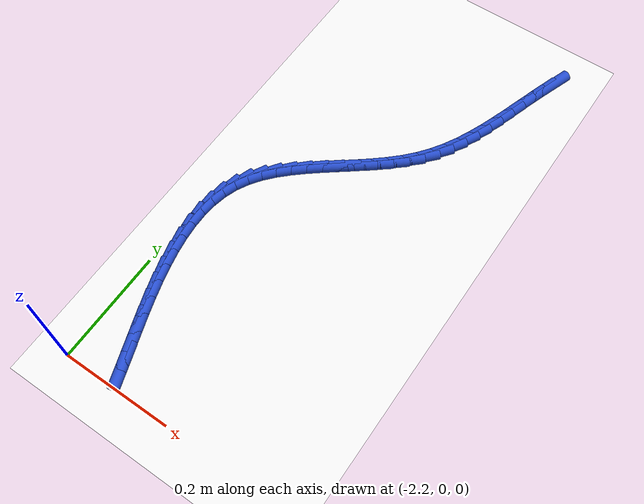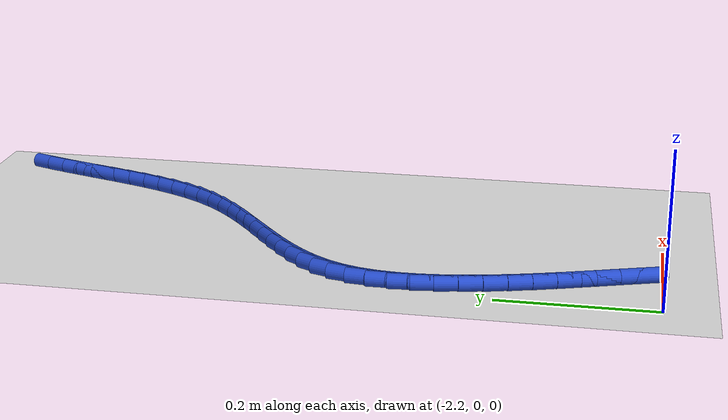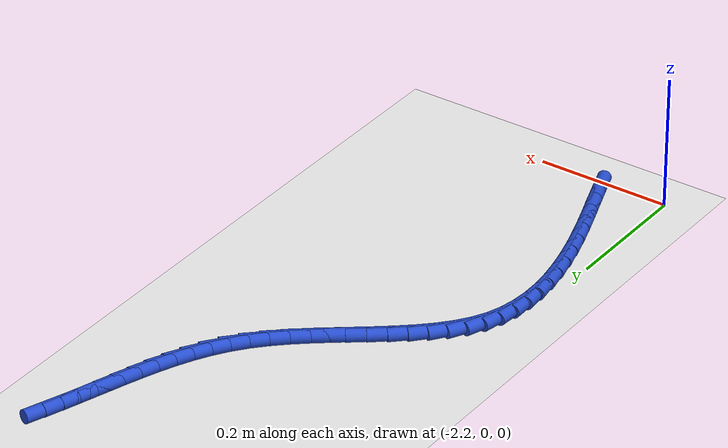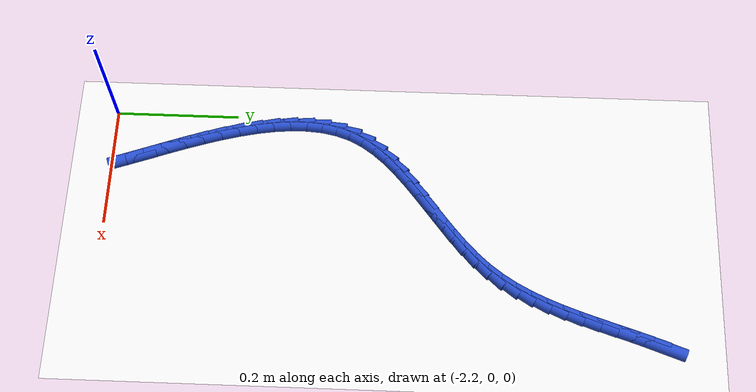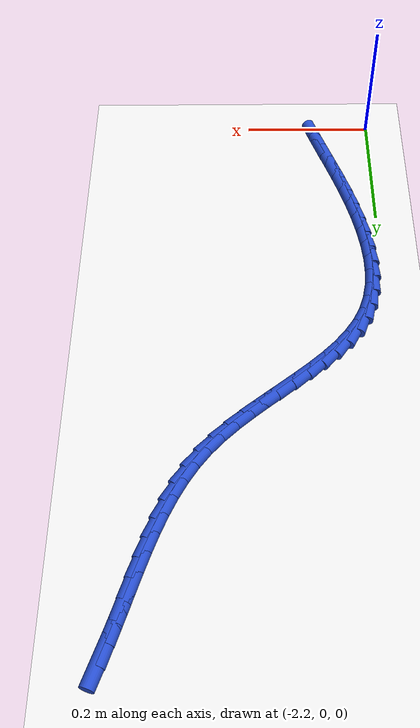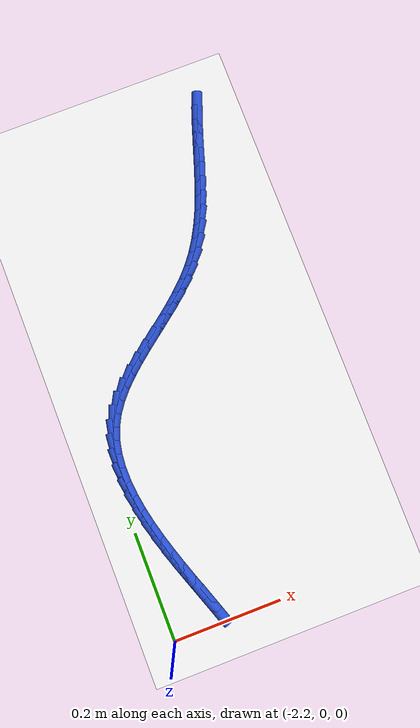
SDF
<sdf version="1.6">
 <world name="default">
  <model name="ground_plane">
   <static>1</static>
   <link name="link">
    <collision name="collision">
     <geometry><plane><normal>0 0 1</normal><size>100 100</size></plane></geometry>
     <surface><friction><ode><mu>100</mu><mu2>50</mu2></ode></friction></surface>
    </collision>
    <visual name="visual">
     <cast_shadows>0</cast_shadows>
     <geometry><plane><normal>0 0 1</normal><size>100 100</size></plane></geometry>
     <material>
      <script><uri>file://media/materials/scripts/gazebo.material</uri><name>Gazebo/WhiteGlow</name></script>
     </material>
    </visual>
   </link>
  </model>
  <model name="line">
   <link name="link_110">
    <pose>-1.820300067441712 0.8834932521563141 0.01 0 1.57 1.2251651449188223</pose>
    <collision name="collision">
     <geometry><cylinder><radius>0.01</radius><length>0.08</length></cylinder></geometry>
    </collision>
    <visual name="visual">
     <material>
      <script><name>Gazebo/Blue</name><uri>file://media/materials/scripts/gazebo.material</uri></script>
     </material>
     <geometry><cylinder><radius>0.01</radius><length>0.08</length></cylinder></geometry>
    </visual>
   </link>
   <link name="link_111">
    <pose>-1.8294961158217167 0.8579547317372505 0.01 0 1.57 1.2461106210678128</pose>
    <collision name="collision">
     <geometry><cylinder><radius>0.01</radius><length>0.08</length></cylinder></geometry>
    </collision>
    <visual name="visual">
     <material>
      <script><name>Gazebo/Blue</name><uri>file://media/materials/scripts/gazebo.material</uri></script>
     </material>
     <geometry><cylinder><radius>0.01</radius><length>0.08</length></cylinder></geometry>
    </visual>
   </link>
   <link name="link_112">
    <pose>-1.838176785709002 0.8321652896264321 0.01 0 1.57 1.2556341183278197</pose>
    <collision name="collision">
     <geometry><cylinder><radius>0.01</radius><length>0.08</length></cylinder></geometry>
    </collision>
    <visual name="visual">
     <material>
      <script><name>Gazebo/Blue</name><uri>file://media/materials/scripts/gazebo.material</uri></script>
     </material>
     <geometry><cylinder><radius>0.01</radius><length>0.08</length></cylinder></geometry>
    </visual>
   </link>
   <link name="link_113">
    <pose>-1.8466163895734051 0.8062792278059373 0.01 0 1.57 1.253813514334452</pose>
    <collision name="collision">
     <geometry><cylinder><radius>0.01</radius><length>0.08</length></cylinder></geometry>
    </collision>
    <visual name="visual">
     <material>
      <script><name>Gazebo/Blue</name><uri>file://media/materials/scripts/gazebo.material</uri></script>
     </material>
     <geometry><cylinder><radius>0.01</radius><length>0.08</length></cylinder></geometry>
    </visual>
   </link>
   <link name="link_114">
    <pose>-1.8550892398847627 0.7804508482578438 0.01 0 1.57 1.240581233020321</pose>
    <collision name="collision">
     <geometry><cylinder><radius>0.01</radius><length>0.08</length></cylinder></geometry>
    </collision>
    <visual name="visual">
     <material>
      <script><name>Gazebo/Blue</name><uri>file://media/materials/scripts/gazebo.material</uri></script>
     </material>
     <geometry><cylinder><radius>0.01</radius><length>0.08</length></cylinder></geometry>
    </visual>
   </link>
   <link name="link_115">
    <pose>-1.8638696491129116 0.7548344529642298 0.01 0 1.57 1.2157289327305618</pose>
    <collision name="collision">
     <geometry><cylinder><radius>0.01</radius><length>0.08</length></cylinder></geometry>
    </collision>
    <visual name="visual">
     <material>
      <script><name>Gazebo/Blue</name><uri>file://media/materials/scripts/gazebo.material</uri></script>
     </material>
     <geometry><cylinder><radius>0.01</radius><length>0.08</length></cylinder></geometry>
    </visual>
   </link>
   <link name="link_116">
    <pose>-1.8732319297276896 0.7295843439071734 0.01 0 1.57 1.1789548626125128</pose>
    <collision name="collision">
     <geometry><cylinder><radius>0.01</radius><length>0.08</length></cylinder></geometry>
    </collision>
    <visual name="visual">
     <material>
      <script><name>Gazebo/Blue</name><uri>file://media/materials/scripts/gazebo.material</uri></script>
     </material>
     <geometry><cylinder><radius>0.01</radius><length>0.08</length></cylinder></geometry>
    </visual>
   </link>
   <link name="link_117">
    <pose>-1.883450394198933 0.7048548230687531 0.01 0 1.57 1.1299626131642286</pose>
    <collision name="collision">
     <geometry><cylinder><radius>0.01</radius><length>0.08</length></cylinder></geometry>
    </collision>
    <visual name="visual">
     <material>
      <script><name>Gazebo/Blue</name><uri>file://media/materials/scripts/gazebo.material</uri></script>
     </material>
     <geometry><cylinder><radius>0.01</radius><length>0.08</length></cylinder></geometry>
    </visual>
   </link>
   <link name="link_118">
    <pose>-1.894799354996479 0.6808001924310462 0.01 0 1.57 1.0686218177737454</pose>
    <collision name="collision">
     <geometry><cylinder><radius>0.01</radius><length>0.08</length></cylinder></geometry>
    </collision>
    <visual name="visual">
     <material>
      <script><name>Gazebo/Blue</name><uri>file://media/materials/scripts/gazebo.material</uri></script>
     </material>
     <geometry><cylinder><radius>0.01</radius><length>0.08</length></cylinder></geometry>
    </visual>
   </link>
   <link name="link_119">
    <pose>-1.9075531245901645 0.6575747539761311 0.01 0 1.57 0.9951918324102135</pose>
    <collision name="collision">
     <geometry><cylinder><radius>0.01</radius><length>0.08</length></cylinder></geometry>
    </collision>
    <visual name="visual">
     <material>
      <script><name>Gazebo/Blue</name><uri>file://media/materials/scripts/gazebo.material</uri></script>
     </material>
     <geometry><cylinder><radius>0.01</radius><length>0.08</length></cylinder></geometry>
    </visual>
   </link>
   <link name="link_120">
    <pose>-1.9219860154498265 0.6353328096860855 0.01 0 1.57 0.910589465296601</pose>
    <collision name="collision">
     <geometry><cylinder><radius>0.01</radius><length>0.08</length></cylinder></geometry>
    </collision>
    <visual name="visual">
     <material>
      <script><name>Gazebo/Blue</name><uri>file://media/materials/scripts/gazebo.material</uri></script>
     </material>
     <geometry><cylinder><radius>0.01</radius><length>0.08</length></cylinder></geometry>
    </visual>
   </link>
   <link name="link_121">
    <pose>-1.9383721306306003 0.6142285510708854 0.01 0 1.57 0.8234863365854982</pose>
    <collision name="collision">
     <geometry><cylinder><radius>0.01</radius><length>0.08</length></cylinder></geometry>
    </collision>
    <visual name="visual">
     <material>
      <script><name>Gazebo/Blue</name><uri>file://media/materials/scripts/gazebo.material</uri></script>
     </material>
     <geometry><cylinder><radius>0.01</radius><length>0.08</length></cylinder></geometry>
    </visual>
   </link>
   <link name="link_122">
    <pose>-1.956813892060996 0.5943256030523256 0.01 0 1.57 0.7539947397672259</pose>
    <collision name="collision">
     <geometry><cylinder><radius>0.01</radius><length>0.08</length></cylinder></geometry>
    </collision>
    <visual name="visual">
     <material>
      <script><name>Gazebo/Blue</name><uri>file://media/materials/scripts/gazebo.material</uri></script>
     </material>
     <geometry><cylinder><radius>0.01</radius><length>0.08</length></cylinder></geometry>
    </visual>
   </link>
   <link name="link_123">
    <pose>-1.976931659027577 0.5754332890478466 0.01 0 1.57 0.7041137675292141</pose>
    <collision name="collision">
     <geometry><cylinder><radius>0.01</radius><length>0.08</length></cylinder></geometry>
    </collision>
    <visual name="visual">
     <material>
      <script><name>Gazebo/Blue</name><uri>file://media/materials/scripts/gazebo.material</uri></script>
     </material>
     <geometry><cylinder><radius>0.01</radius><length>0.08</length></cylinder></geometry>
    </visual>
   </link>
   <link name="link_124">
    <pose>-1.9982618089176265 0.5573166296779766 0.01 0 1.57 0.6723296360128934</pose>
    <collision name="collision">
     <geometry><cylinder><radius>0.01</radius><length>0.08</length></cylinder></geometry>
    </collision>
    <visual name="visual">
     <material>
      <script><name>Gazebo/Blue</name><uri>file://media/materials/scripts/gazebo.material</uri></script>
     </material>
     <geometry><cylinder><radius>0.01</radius><length>0.08</length></cylinder></geometry>
    </visual>
   </link>
   <link name="link_125">
    <pose>-2.020340719118433 0.5397406455632435 0.01 0 1.57 0.6575799598246863</pose>
    <collision name="collision">
     <geometry><cylinder><radius>0.01</radius><length>0.08</length></cylinder></geometry>
    </collision>
    <visual name="visual">
     <material>
      <script><name>Gazebo/Blue</name><uri>file://media/materials/scripts/gazebo.material</uri></script>
     </material>
     <geometry><cylinder><radius>0.01</radius><length>0.08</length></cylinder></geometry>
    </visual>
   </link>
   <link name="link_126">
    <pose>-2.0427047670172795 0.5224703573241758 0.01 0 1.57 0.6594722643798511</pose>
    <collision name="collision">
     <geometry><cylinder><radius>0.01</radius><length>0.08</length></cylinder></geometry>
    </collision>
    <visual name="visual">
     <material>
      <script><name>Gazebo/Blue</name><uri>file://media/materials/scripts/gazebo.material</uri></script>
     </material>
     <geometry><cylinder><radius>0.01</radius><length>0.08</length></cylinder></geometry>
    </visual>
   </link>
   <link name="link_127">
    <pose>-2.064890330001452 0.5052707855813016 0.01 0 1.57 0.6783834264000509</pose>
    <collision name="collision">
     <geometry><cylinder><radius>0.01</radius><length>0.08</length></cylinder></geometry>
    </collision>
    <visual name="visual">
     <material>
      <script><name>Gazebo/Blue</name><uri>file://media/materials/scripts/gazebo.material</uri></script>
     </material>
     <geometry><cylinder><radius>0.01</radius><length>0.08</length></cylinder></geometry>
    </visual>
   </link>
   <link name="link_128">
    <pose>-2.0864337854582353 0.4879069509551493 0.01 0 1.57 0.7154967331663101</pose>
    <collision name="collision">
     <geometry><cylinder><radius>0.01</radius><length>0.08</length></cylinder></geometry>
    </collision>
    <visual name="visual">
     <material>
      <script><name>Gazebo/Blue</name><uri>file://media/materials/scripts/gazebo.material</uri></script>
     </material>
     <geometry><cylinder><radius>0.01</radius><length>0.08</length></cylinder></geometry>
    </visual>
   </link>
   <link name="link_129">
    <pose>-2.106871510774916 0.4701438740662474 0.01 0 1.57 0.7727578719521758</pose>
    <collision name="collision">
     <geometry><cylinder><radius>0.01</radius><length>0.08</length></cylinder></geometry>
    </collision>
    <visual name="visual">
     <material>
      <script><name>Gazebo/Blue</name><uri>file://media/materials/scripts/gazebo.material</uri></script>
     </material>
     <geometry><cylinder><radius>0.01</radius><length>0.08</length></cylinder></geometry>
    </visual>
   </link>
   <link name="link_130">
    <pose>-2.125739883338778 0.45174657553512393 0.01 0 1.57 0.8526366683946361</pose>
    <collision name="collision">
     <geometry><cylinder><radius>0.01</radius><length>0.08</length></cylinder></geometry>
    </collision>
    <visual name="visual">
     <material>
      <script><name>Gazebo/Blue</name><uri>file://media/materials/scripts/gazebo.material</uri></script>
     </material>
     <geometry><cylinder><radius>0.01</radius><length>0.08</length></cylinder></geometry>
    </visual>
   </link>
   <link name="link_131">
    <pose>-2.142575280537107 0.43248007598230725 0.01 0 1.57 0.9574617235182465</pose>
    <collision name="collision">
     <geometry><cylinder><radius>0.01</radius><length>0.08</length></cylinder></geometry>
    </collision>
    <visual name="visual">
     <material>
      <script><name>Gazebo/Blue</name><uri>file://media/materials/scripts/gazebo.material</uri></script>
     </material>
     <geometry><cylinder><radius>0.01</radius><length>0.08</length></cylinder></geometry>
    </visual>
   </link>
   <link name="link_132">
    <pose>-2.156914079757189 0.4121093960283256 0.01 0 1.57 1.0880383302012488</pose>
    <collision name="collision">
     <geometry><cylinder><radius>0.01</radius><length>0.08</length></cylinder></geometry>
    </collision>
    <visual name="visual">
     <material>
      <script><name>Gazebo/Blue</name><uri>file://media/materials/scripts/gazebo.material</uri></script>
     </material>
     <geometry><cylinder><radius>0.01</radius><length>0.08</length></cylinder></geometry>
    </visual>
   </link>
   <link name="link_133">
    <pose>-2.1682926684750066 0.39039956202040704 0.01 0 1.57 1.235061711777035</pose>
    <collision name="collision">
     <geometry><cylinder><radius>0.01</radius><length>0.08</length></cylinder></geometry>
    </collision>
    <visual name="visual">
     <material>
      <script><name>Gazebo/Blue</name><uri>file://media/materials/scripts/gazebo.material</uri></script>
     </material>
     <geometry><cylinder><radius>0.01</radius><length>0.08</length></cylinder></geometry>
    </visual>
   </link>
   <link name="link_134">
    <pose>-2.1763893750269863 0.3671961709218865 0.01 0 1.57 1.3703348490975045</pose>
    <collision name="collision">
     <geometry><cylinder><radius>0.01</radius><length>0.08</length></cylinder></geometry>
    </collision>
    <visual name="visual">
     <material>
      <script><name>Gazebo/Blue</name><uri>file://media/materials/scripts/gazebo.material</uri></script>
     </material>
     <geometry><cylinder><radius>0.01</radius><length>0.08</length></cylinder></geometry>
    </visual>
   </link>
   <link name="link_135">
    <pose>-2.181381395574376 0.34262799458934085 0.01 0 1.57 1.4865401852515499</pose>
    <collision name="collision">
     <geometry><cylinder><radius>0.01</radius><length>0.08</length></cylinder></geometry>
    </collision>
    <visual name="visual">
     <material>
      <script><name>Gazebo/Blue</name><uri>file://media/materials/scripts/gazebo.material</uri></script>
     </material>
     <geometry><cylinder><radius>0.01</radius><length>0.08</length></cylinder></geometry>
    </visual>
   </link>
   <link name="link_136">
    <pose>-2.1835554652243636 0.31688598303111104 0.01 0 1.57 -1.5574333235824618</pose>
    <collision name="collision">
     <geometry><cylinder><radius>0.01</radius><length>0.08</length></cylinder></geometry>
    </collision>
    <visual name="visual">
     <material>
      <script><name>Gazebo/Blue</name><uri>file://media/materials/scripts/gazebo.material</uri></script>
     </material>
     <geometry><cylinder><radius>0.01</radius><length>0.08</length></cylinder></geometry>
    </visual>
   </link>
   <link name="link_137">
    <pose>-2.183198319084135 0.29016108625553816 0.01 0 1.57 -1.4765298035585481</pose>
    <collision name="collision">
     <geometry><cylinder><radius>0.01</radius><length>0.08</length></cylinder></geometry>
    </collision>
    <visual name="visual">
     <material>
      <script><name>Gazebo/Blue</name><uri>file://media/materials/scripts/gazebo.material</uri></script>
     </material>
     <geometry><cylinder><radius>0.01</radius><length>0.08</length></cylinder></geometry>
    </visual>
   </link>
   <link name="link_138">
    <pose>-2.1805966922608797 0.2626442542709631 0.01 0 1.57 -1.4100430684189038</pose>
    <collision name="collision">
     <geometry><cylinder><radius>0.01</radius><length>0.08</length></cylinder></geometry>
    </collision>
    <visual name="visual">
     <material>
      <script><name>Gazebo/Blue</name><uri>file://media/materials/scripts/gazebo.material</uri></script>
     </material>
     <geometry><cylinder><radius>0.01</radius><length>0.08</length></cylinder></geometry>
    </visual>
   </link>
   <link name="link_139">
    <pose>-2.1760373198617833 0.2345264370857269 0.01 0 1.57 -1.3557760170897464</pose>
    <collision name="collision">
     <geometry><cylinder><radius>0.01</radius><length>0.08</length></cylinder></geometry>
    </collision>
    <visual name="visual">
     <material>
      <script><name>Gazebo/Blue</name><uri>file://media/materials/scripts/gazebo.material</uri></script>
     </material>
     <geometry><cylinder><radius>0.01</radius><length>0.08</length></cylinder></geometry>
    </visual>
   </link>
   <link name="link_140">
    <pose>-2.1698069369940343 0.20599858470817098 0.01 0 1.57 -1.3118572188820077</pose>
    <collision name="collision">
     <geometry><cylinder><radius>0.01</radius><length>0.08</length></cylinder></geometry>
    </collision>
    <visual name="visual">
     <material>
      <script><name>Gazebo/Blue</name><uri>file://media/materials/scripts/gazebo.material</uri></script>
     </material>
     <geometry><cylinder><radius>0.01</radius><length>0.08</length></cylinder></geometry>
    </visual>
   </link>
   <link name="link_141">
    <pose>-2.1621922787648185 0.1772516471466353 0.01 0 1.57 -1.2768422926736342</pose>
    <collision name="collision">
     <geometry><cylinder><radius>0.01</radius><length>0.08</length></cylinder></geometry>
    </collision>
    <visual name="visual">
     <material>
      <script><name>Gazebo/Blue</name><uri>file://media/materials/scripts/gazebo.material</uri></script>
     </material>
     <geometry><cylinder><radius>0.01</radius><length>0.08</length></cylinder></geometry>
    </visual>
   </link>
   <link name="link_142">
    <pose>-2.1534800736865884 0.1484722837833289 0.01 0 1.57 -1.2503972569374595</pose>
    <collision name="collision">
     <geometry><cylinder><radius>0.01</radius><length>0.08</length></cylinder></geometry>
    </collision>
    <visual name="visual">
     <material>
      <script><name>Gazebo/Blue</name><uri>file://media/materials/scripts/gazebo.material</uri></script>
     </material>
     <geometry><cylinder><radius>0.01</radius><length>0.08</length></cylinder></geometry>
    </visual>
   </link>
   <link name="link_143">
    <pose>-2.1439569372905374 0.11977364685256853 0.01 0 1.57 -1.2325859325226103</pose>
    <collision name="collision">
     <geometry><cylinder><radius>0.01</radius><length>0.08</length></cylinder></geometry>
    </collision>
    <visual name="visual">
     <material>
      <script><name>Gazebo/Blue</name><uri>file://media/materials/scripts/gazebo.material</uri></script>
     </material>
     <geometry><cylinder><radius>0.01</radius><length>0.08</length></cylinder></geometry>
    </visual>
   </link>
   <link name="link_144">
    <pose>-2.1339093901839243 0.09120712978012213 0.01 0 1.57 -1.2231568311027319</pose>
    <collision name="collision">
     <geometry><cylinder><radius>0.01</radius><length>0.08</length></cylinder></geometry>
    </collision>
    <visual name="visual">
     <material>
      <script><name>Gazebo/Blue</name><uri>file://media/materials/scripts/gazebo.material</uri></script>
     </material>
     <geometry><cylinder><radius>0.01</radius><length>0.08</length></cylinder></geometry>
    </visual>
   </link>
   <link name="link_145">
    <pose>-2.123623950025104 0.06282220739385817 0.01 0 1.57 -1.2220550985362912</pose>
    <collision name="collision">
     <geometry><cylinder><radius>0.01</radius><length>0.08</length></cylinder></geometry>
    </collision>
    <visual name="visual">
     <material>
      <script><name>Gazebo/Blue</name><uri>file://media/materials/scripts/gazebo.material</uri></script>
     </material>
     <geometry><cylinder><radius>0.01</radius><length>0.08</length></cylinder></geometry>
    </visual>
   </link>
   <link name="link_146">
    <pose>-2.113387134472432 0.034668354521644996 0.01 0 1.57 -1.2294623051674325</pose>
    <collision name="collision">
     <geometry><cylinder><radius>0.01</radius><length>0.08</length></cylinder></geometry>
    </collision>
    <visual name="visual">
     <material>
      <script><name>Gazebo/Blue</name><uri>file://media/materials/scripts/gazebo.material</uri></script>
     </material>
     <geometry><cylinder><radius>0.01</radius><length>0.08</length></cylinder></geometry>
    </visual>
   </link>
  </model>
 </world>
</sdf>
